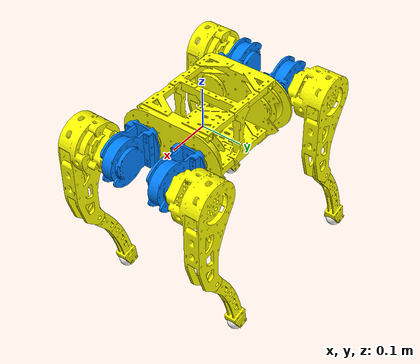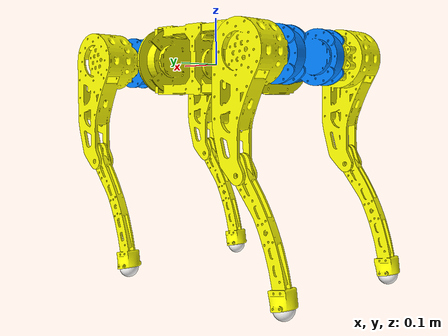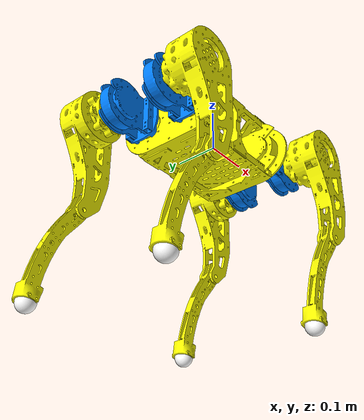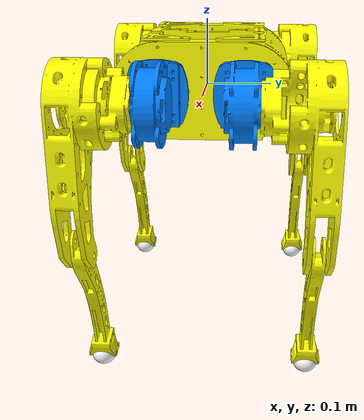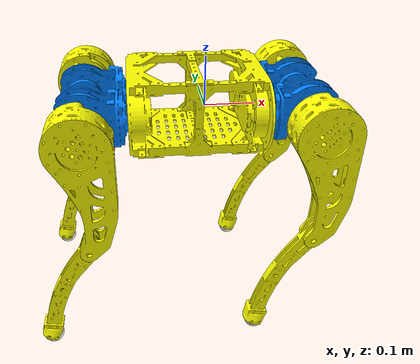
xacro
<?xml version="1.0" encoding="utf-8"?>
<robot
  name="g308_km" xmlns:xacro="http://www.ros.org/wiki/xacro">
  <link
    name="base">
    <inertial>
      <origin
        xyz="-0.021 0.00 -0.006"
        rpy="0 0 0" />
      <mass
        value="4.104" />
      <inertia
        ixx="0.022"
        ixy="0.00"
        ixz="0.00"
        iyy="0.052"
        iyz="0.00"
        izz="0.063" />
    </inertial>
    <visual>
      <origin
        xyz="0 0 0"
        rpy="0 0 0" />
      <geometry>
        <mesh
          filename="package://g308_km/meshes/base_link.STL" />
      </geometry>
      <material
        name="">
        <color
          rgba="1 1 0 1" />
      </material>
    </visual>
    <collision>
      <origin
        xyz="0 0 0"
        rpy="0 0 0" />
      <geometry>
        <mesh
          filename="package://g308_km/meshes/base_link.STL" />
      </geometry>
    </collision>
  </link>
  <link
    name="FL_hip">
    <inertial>
      <origin
        xyz="0.046 0.00 -0.001"
        rpy="0 0 0" />
      <mass
        value="1.034" />
      <inertia
        ixx="0.001"
        ixy="0.0"
        ixz="0.0"
        iyy="0.001"
        iyz="0.00"
        izz="0.002" />
    </inertial>
    <visual>
      <origin
        xyz="0 0 0"
        rpy="0 0 0" />
      <geometry>
        <mesh
          filename="package://g308_km/meshes/FL_hip.STL" />
      </geometry>
      <material
        name="">
        <color
          rgba="0 0.501960784313725 1 1" />
      </material>
    </visual>
    <collision>
      <origin
        xyz="0 0 0"
        rpy="0 0 0" />
      <geometry>
        <mesh
          filename="package://g308_km/meshes/FL_hip.STL" />
      </geometry>
    </collision>
  </link>
  <joint
    name="FL_hip_joint"
    type="revolute">
    <origin
      xyz="-0.1699 -0.0615 0.0077356"
      rpy="1.5708 0 3.1416" />
    <parent
      link="base" />
    <child
      link="FL_hip" />
    <axis
      xyz="1 0 0" />
    <limit
      lower="-0.25"
      upper="0.25"
      effort="20"
      velocity="10" />
  </joint>
  <link
    name="FL_thigh">
    <inertial>
      <origin
        xyz="-0.002683 -0.027136 -0.042559"
        rpy="0 0 0" />
      <mass
        value="1.623153" />
      <inertia
        ixx="0.007266"
        ixy="-0.000730"
        ixz="-0.00177"
        iyy="0.002161"
        iyz="-0.000979"
        izz="0.007364" />
    </inertial>
    <visual>
      <origin
        xyz="0 0 0"
        rpy="0 0 0" />
      <geometry>
        <mesh
          filename="package://g308_km/meshes/FL_thigh.STL" />
      </geometry>
      <material
        name="">
        <color
          rgba="1 1 0 1" />
      </material>
    </visual>
    <collision>
      <origin
        xyz="0 0 0"
        rpy="0 0 0" />
      <geometry>
        <mesh
          filename="package://g308_km/meshes/FL_thigh.STL" />
      </geometry>
    </collision>
  </link>
  <joint
    name="FL_thigh_joint"
    type="revolute">
    <origin
      xyz="0.0677 0 -0.039"
      rpy="0 0 0" />
    <parent
      link="FL_hip" />
    <child
      link="FL_thigh" />
    <axis
      xyz="0 0 -1" />
    <limit
      lower="-1.5"
      upper="1.5"
      effort="20"
      velocity="10" />
  </joint>
  <link
    name="FL_calf">
    <inertial>
      <origin
        xyz="0.0502864229248673 -0.091368336916456 0.0100012603719881"
        rpy="0 0 0" />
      <mass
        value="0.244" />
      <inertia
        ixx="0.001"
        ixy="0.001"
        ixz="0.0"
        iyy="0.0"
        iyz="0.0"
        izz="0.002" />
    </inertial>
    <visual>
      <origin
        xyz="0 0 0"
        rpy="0 0 0" />
      <geometry>
        <mesh
          filename="package://g308_km/meshes/FL_calf.STL" />
      </geometry>
      <material
        name="">
        <color
          rgba="1 1 0 1" />
      </material>
    </visual>
    <collision>
      <origin
        xyz="0 0 0"
        rpy="0 0 0" />
      <geometry>
        <mesh
          filename="package://g308_km/meshes/FL_calf.STL" />
      </geometry>
    </collision>
  </link>
  <joint
    name="FL_calf_joint"
    type="revolute">
    <origin
      xyz="0 -0.22 -0.0765"
      rpy="0 0 0" />
    <parent
      link="FL_thigh" />
    <child
      link="FL_calf" />
    <axis
      xyz="0 0 -1" />
    <limit
      lower="-2.3"
      upper="0"
      effort="20"
      velocity="10" />
  </joint>
  <link
    name="FL_foot">
    <inertial>
      <origin
        xyz="5.57990809113562E-09 0.000156464784550781 6.38025034006562E-05"
        rpy="0 0 0" />
      <mass
        value="0.0311902243903797" />
      <inertia
        ixx="5.06120841117781E-06"
        ixy="1.89067382214396E-14"
        ixz="8.44229934715806E-13"
        iyy="4.98515638872325E-06"
        iyz="-1.02064134491074E-08"
        izz="5.01872622594312E-06" />
    </inertial>
    <visual>
      <origin
        xyz="0 0 0"
        rpy="0 0 0" />
      <geometry>
        <mesh
          filename="package://g308_km/meshes/FL_foot.STL" />
      </geometry>
      <material
        name="">
        <color
          rgba="1 1 1 1" />
      </material>
    </visual>
    <collision>
      <origin
        xyz="0 0 0"
        rpy="0 0 0" />
      <geometry>
        <mesh
          filename="package://g308_km/meshes/FL_foot.STL" />
      </geometry>
    </collision>
  </link>
  <joint
    name="FL_foot_joint"
    type="fixed">
    <origin
      xyz="0.096205 -0.22407 0.01"
      rpy="2.9432 1.5708 0" />
    <parent
      link="FL_calf" />
    <child
      link="FL_foot" />
    <axis
      xyz="0 0 0" />
    <limit
      effort="20"
      velocity="10" />
  </joint>
  <link
    name="RL_hip">
    <inertial>
      <origin
        xyz="-0.045606 0.00005 -0.000897"
        rpy="0 0 0" />
      <mass
        value="1.034431" />
      <inertia
        ixx="0.000668"
        ixy="-0.000004"
        ixz="-0.000019"
        iyy="0.001443"
        iyz="-9.7756225314779E-09"
        izz="0.001692" />
    </inertial>
    <visual>
      <origin
        xyz="0 0 0"
        rpy="0 0 0" />
      <geometry>
        <mesh
          filename="package://g308_km/meshes/RL_hip.STL" />
      </geometry>
      <material
        name="">
        <color
          rgba="0 0.501960784313725 1 1" />
      </material>
    </visual>
    <collision>
      <origin
        xyz="0 0 0"
        rpy="0 0 0" />
      <geometry>
        <mesh
          filename="package://g308_km/meshes/RL_hip.STL" />
      </geometry>
    </collision>
  </link>
  <joint
    name="RL_hip_joint"
    type="revolute">
    <origin
      xyz="0.12709 -0.0615 0.0077356"
      rpy="1.5708 0 3.1416" />
    <parent
      link="base" />
    <child
      link="RL_hip" />
    <axis
      xyz="1 0 0" />
    <limit
      lower="-0.25"
      upper="0.25"
      effort="20"
      velocity="10" />
  </joint>
  <link
    name="RL_thigh">
    <inertial>
      <origin
        xyz="-0.014325 -0.015494 -0.0263559"
        rpy="0 0 0" />
      <mass
        value="1.623153" />
      <inertia
        ixx="0.007266"
        ixy="-0.000730"
        ixz="-0.000177"
        iyy="0.002161"
        iyz="-0.000979"
        izz="0.007364" />
    </inertial>
    <visual>
      <origin
        xyz="0 0 0"
        rpy="0 0 0" />
      <geometry>
        <mesh
          filename="package://g308_km/meshes/RL_thigh.STL" />
      </geometry>
      <material
        name="">
        <color
          rgba="1 1 0 1" />
      </material>
    </visual>
    <collision>
      <origin
        xyz="0 0 0"
        rpy="0 0 0" />
      <geometry>
        <mesh
          filename="package://g308_km/meshes/RL_thigh.STL" />
      </geometry>
    </collision>
  </link>
  <joint
    name="RL_thigh_joint"
    type="revolute">
    <origin
      xyz="-0.056059 -0.011641 -0.059"
      rpy="0 0 0" />
    <parent
      link="RL_hip" />
    <child
      link="RL_thigh" />
    <axis
      xyz="0 0 -1" />
    <limit
      lower="-1.5"
      upper="1.5"
      effort="20"
      velocity="10" />
  </joint>
  <link
    name="RL_calf">
    <inertial>
      <origin
        xyz="0.050286422924934 -0.0913683369164015 0.0100012603719424"
        rpy="0 0 0" />
      <mass
        value="0.243573" />
      <inertia
        ixx="0.001367"
        ixy="-0.000642"
        ixz="0.0"
        iyy="0.000356"
        iyz="0.0"
        izz="0.001698" />
    </inertial>
    <visual>
      <origin
        xyz="0 0 0"
        rpy="0 0 0" />
      <geometry>
        <mesh
          filename="package://g308_km/meshes/RL_calf.STL" />
      </geometry>
      <material
        name="">
        <color
          rgba="1 1 0 1" />
      </material>
    </visual>
    <collision>
      <origin
        xyz="0 0 0"
        rpy="0 0 0" />
      <geometry>
        <mesh
          filename="package://g308_km/meshes/RL_calf.STL" />
      </geometry>
    </collision>
  </link>
  <joint
    name="RL_calf_joint"
    type="revolute">
    <origin
      xyz="-0.011641 -0.20836 -0.0565"
      rpy="0 0 0" />
    <parent
      link="RL_thigh" />
    <child
      link="RL_calf" />
    <axis
      xyz="0 0 -1" />
    <limit
      lower="-2.3"
      upper="0"
      effort="20"
      velocity="10" />
  </joint>
  <link
    name="RL_foot">
    <inertial>
      <origin
        xyz="5.57990809113562E-09 0.000156464784550669 6.38025034006562E-05"
        rpy="0 0 0" />
      <mass
        value="0.0311902243903798" />
      <inertia
        ixx="5.06120841117782E-06"
        ixy="1.89067431518709E-14"
        ixz="8.44229935295326E-13"
        iyy="4.98515638872326E-06"
        iyz="-1.0206413449107E-08"
        izz="5.01872622594313E-06" />
    </inertial>
    <visual>
      <origin
        xyz="0 0 0"
        rpy="0 0 0" />
      <geometry>
        <mesh
          filename="package://g308_km/meshes/RL_foot.STL" />
      </geometry>
      <material
        name="">
        <color
          rgba="1 1 1 1" />
      </material>
    </visual>
    <collision>
      <origin
        xyz="0 0 0"
        rpy="0 0 0" />
      <geometry>
        <mesh
          filename="package://g308_km/meshes/RL_foot.STL" />
      </geometry>
    </collision>
  </link>
  <joint
    name="RL_foot_joint"
    type="fixed">
    <origin
      xyz="0.096205 -0.22407 0.01"
      rpy="2.9432 1.5708 0" />
    <parent
      link="RL_calf" />
    <child
      link="RL_foot" />
    <axis
      xyz="0 0 0" />
  </joint>
  <link
    name="FR_hip">
    <inertial>
      <origin
        xyz="0.0045611 0.00005 0.000897"
        rpy="0 0 0" />
      <mass
        value="1.034431" />
      <inertia
        ixx="0.000668"
        ixy="0.000004"
        ixz="-0.00002"
        iyy="0.001444"
        iyz="0.0"
        izz="0.001692" />
    </inertial>
    <visual>
      <origin
        xyz="0 0 0"
        rpy="0 0 0" />
      <geometry>
        <mesh
          filename="package://g308_km/meshes/FR_hip.STL" />
      </geometry>
      <material
        name="">
        <color
          rgba="0 0.501960784313725 1 1" />
      </material>
    </visual>
    <collision>
      <origin
        xyz="0 0 0"
        rpy="0 0 0" />
      <geometry>
        <mesh
          filename="package://g308_km/meshes/FR_hip.STL" />
      </geometry>
    </collision>
  </link>
  <joint
    name="FR_hip_joint"
    type="revolute">
    <origin
      xyz="-0.1699 0.0615 0.0077356"
      rpy="1.5708 0 3.1416" />
    <parent
      link="base" />
    <child
      link="FR_hip" />
    <axis
      xyz="1 0 0" />
    <limit
      lower="-0.25"
      upper="0.25"
      effort="20"
      velocity="10" />
  </joint>
  <link
    name="FR_thigh">
    <inertial>
      <origin
        xyz="-0.014296 -0.015465 0.022559"
        rpy="0 0 0" />
      <mass
        value="1.623153" />
      <inertia
        ixx="0.007268"
        ixy="-0.000732"
        ixz="0.000177"
        iyy="0.002162"
        iyz="0.00098"
        izz="0.007366" />
    </inertial>
    <visual>
      <origin
        xyz="0 0 0"
        rpy="0 0 0" />
      <geometry>
        <mesh
          filename="package://g308_km/meshes/FR_thigh.STL" />
      </geometry>
      <material
        name="">
        <color
          rgba="1 1 0 1" />
      </material>
    </visual>
    <collision>
      <origin
        xyz="0 0 0"
        rpy="0 0 0" />
      <geometry>
        <mesh
          filename="package://g308_km/meshes/FR_thigh.STL" />
      </geometry>
    </collision>
  </link>
  <joint
    name="FR_thigh_joint"
    type="revolute">
    <origin
      xyz="0.079341 -0.011641 0.059"
      rpy="0 0 0" />
    <parent
      link="FR_hip" />
    <child
      link="FR_thigh" />
    <axis
      xyz="0 0 -1" />
    <limit
      lower="-1.5"
      upper="1.5"
      effort="20"
      velocity="10" />
  </joint>
  <link
    name="FR_calf">
    <inertial>
      <origin
        xyz="0.0502864229245757 -0.0913683369170326 0.0100012603711955"
        rpy="0 0 0" />
      <mass
        value="0.24357427073011" />
      <inertia
        ixx="0.001367"
        ixy="0.000642"
        ixz="0.00"
        iyy="0.000356"
        iyz="0.00"
        izz="0.001698" />
    </inertial>
    <visual>
      <origin
        xyz="0 0 0"
        rpy="0 0 0" />
      <geometry>
        <mesh
          filename="package://g308_km/meshes/FR_calf.STL" />
      </geometry>
      <material
        name="">
        <color
          rgba="1 1 0 1" />
      </material>
    </visual>
    <collision>
      <origin
        xyz="0 0 0"
        rpy="0 0 0" />
      <geometry>
        <mesh
          filename="package://g308_km/meshes/FR_calf.STL" />
      </geometry>
    </collision>
  </link>
  <joint
    name="FR_calf_joint"
    type="revolute">
    <origin
      xyz="-0.011641 -0.20836 0.0365"
      rpy="0 0 0" />
    <parent
      link="FR_thigh" />
    <child
      link="FR_calf" />
    <axis
      xyz="0 0 -1" />
    <limit
      lower="-2.3"
      upper="0"
      effort="20"
      velocity="10" />
  </joint>
  <link
    name="FR_foot">
    <inertial>
      <origin
        xyz="5.57990809113562E-09 0.000156464784550669 6.38025034006839E-05"
        rpy="0 0 0" />
      <mass
        value="0.0311902243903797" />
      <inertia
        ixx="5.06120841117781E-06"
        ixy="1.8906738882967E-14"
        ixz="8.44229938233497E-13"
        iyy="4.98515638872325E-06"
        iyz="-1.0206413449107E-08"
        izz="5.01872622594312E-06" />
    </inertial>
    <visual>
      <origin
        xyz="0 0 0"
        rpy="0 0 0" />
      <geometry>
        <mesh
          filename="package://g308_km/meshes/FR_foot.STL" />
      </geometry>
      <material
        name="">
        <color
          rgba="1 1 1 1" />
      </material>
    </visual>
    <collision>
      <origin
        xyz="0 0 0"
        rpy="0 0 0" />
      <geometry>
        <mesh
          filename="package://g308_km/meshes/FR_foot.STL" />
      </geometry>
    </collision>
  </link>
  <joint
    name="FR_foot_joint"
    type="fixed">
    <origin
      xyz="0.096204687182093 -0.224068557253551 0.00999999999925294"
      rpy="2.94324795442943 1.5707963267949 0" />
    <parent
      link="FR_calf" />
    <child
      link="FR_foot" />
    <axis
      xyz="0 0 0" />
  </joint>
  <link
    name="RR_hip">
    <inertial>
      <origin
        xyz="-0.045611 0.000114 0.000897"
        rpy="0 0 0" />
      <mass
        value="1.034431" />
      <inertia
        ixx="0.000668"
        ixy="-0.000003"
        ixz="0.000019"
        iyy="0.001443"
        iyz="0.00"
        izz="0.001692" />
    </inertial>
    <visual>
      <origin
        xyz="0 0 0"
        rpy="0 0 0" />
      <geometry>
        <mesh
          filename="package://g308_km/meshes/RR_hip.STL" />
      </geometry>
      <material
        name="">
        <color
          rgba="0 0.501960784313725 1 1" />
      </material>
    </visual>
    <collision>
      <origin
        xyz="0 0 0"
        rpy="0 0 0" />
      <geometry>
        <mesh
          filename="package://g308_km/meshes/RR_hip.STL" />
      </geometry>
    </collision>
  </link>
  <joint
    name="RR_hip_joint"
    type="revolute">
    <origin
      xyz="0.12709 0.0615 0.0077356"
      rpy="1.5708 0 3.1416" />
    <parent
      link="base" />
    <child
      link="RR_hip" />
    <axis
      xyz="1 0 0" />
    <limit
      lower="-0.25"
      upper="0.25"
      effort="20"
      velocity="10" />
  </joint>
  <link
    name="RR_thigh">
    <inertial>
      <origin
        xyz="-0.14296 -0.015465 0.022559"
        rpy="0 0 0" />
      <mass
        value="1.623153" />
      <inertia
        ixx="0.007268"
        ixy="-0.000732"
        ixz="0.000177"
        iyy="0.002162"
        iyz="0.000980"
        izz="0.007366" />
    </inertial>
    <visual>
      <origin
        xyz="0 0 0"
        rpy="0 0 0" />
      <geometry>
        <mesh
          filename="package://g308_km/meshes/RR_thigh.STL" />
      </geometry>
      <material
        name="">
        <color
          rgba="1 1 0 1" />
      </material>
    </visual>
    <collision>
      <origin
        xyz="0 0 0"
        rpy="0 0 0" />
      <geometry>
        <mesh
          filename="package://g308_km/meshes/RR_thigh.STL" />
      </geometry>
    </collision>
  </link>
  <joint
    name="RR_thigh_joint"
    type="revolute">
    <origin
      xyz="-0.056059 -0.011641 0.059"
      rpy="0 0 0" />
    <parent
      link="RR_hip" />
    <child
      link="RR_thigh" />
    <axis
      xyz="0 0 -1" />
    <limit
      lower="-1.5"
      upper="1.5"
      effort="20"
      velocity="10" />
  </joint>
  <link
    name="RR_calf">
    <inertial>
      <origin
        xyz="0.0502864229248036 -0.0913683369165559 0.0100012603716604"
        rpy="0 0 0" />
      <mass
        value="0.24357427073011" />
      <inertia
        ixx="0.000648204117665621"
        ixy="-0.000308645680473211"
        ixz="-2.22084372635169E-09"
        iyy="0.000186059943789856"
        iyz="5.13538413169624E-09"
        izz="0.000823306990230793" />
    </inertial>
    <visual>
      <origin
        xyz="0 0 0"
        rpy="0 0 0" />
      <geometry>
        <mesh
          filename="package://g308_km/meshes/RR_calf.STL" />
      </geometry>
      <material
        name="">
        <color
          rgba="1 1 0 1" />
      </material>
    </visual>
    <collision>
      <origin
        xyz="0 0 0"
        rpy="0 0 0" />
      <geometry>
        <mesh
          filename="package://g308_km/meshes/RR_calf.STL" />
      </geometry>
    </collision>
  </link>
  <joint
    name="RR_calf_joint"
    type="revolute">
    <origin
      xyz="-0.011641 -0.20836 0.0365"
      rpy="0 0 0" />
    <parent
      link="RR_thigh" />
    <child
      link="RR_calf" />
    <axis
      xyz="0 0 -1" />
    <limit
      lower="-2.3"
      upper="0"
      effort="20"
      velocity="10" />
  </joint>
  <link
    name="RR_foot">
    <inertial>
      <origin
        xyz="5.57990806338005E-09 0.000156464784550725 6.38025034006839E-05"
        rpy="0 0 0" />
      <mass
        value="0.0311902243903798" />
      <inertia
        ixx="5.06120841117781E-06"
        ixy="1.89067421324778E-14"
        ixz="8.44229932322898E-13"
        iyy="4.98515638872325E-06"
        iyz="-1.020641344911E-08"
        izz="5.01872622594312E-06" />
    </inertial>
    <visual>
      <origin
        xyz="0 0 0"
        rpy="0 0 0" />
      <geometry>
        <mesh
          filename="package://g308_km/meshes/RR_foot.STL" />
      </geometry>
      <material
        name="">
        <color
          rgba="1 1 1 1" />
      </material>
    </visual>
    <collision>
      <origin
        xyz="0 0 0"
        rpy="0 0 0" />
      <geometry>
        <mesh
          filename="package://g308_km/meshes/RR_foot.STL" />
      </geometry>
    </collision>
  </link>
  <joint
    name="RR_foot_joint"
    type="fixed">
    <origin
      xyz="0.0962046871823301 -0.224068557253087 0.00999999999971268"
      rpy="2.94324795442943 1.5707963267949 0" />
    <parent
      link="RR_calf" />
    <child
      link="RR_foot" />
    <axis
      xyz="0 0 0" />
  </joint>

  <transmission name="t11">
    <type>transmission_interface/SimpleTransmission</type>
    <joint name="FL_hip_joint">
      <hardwareInterface>hardware_interface/EffortJointInterface</hardwareInterface>
    </joint>
    <actuator name="a11">
      <mechanicalReduction>1.0</mechanicalReduction>
      <hardwareInterface>hardware_interface/EffortJointInterface</hardwareInterface>
    </actuator>
  </transmission>
   <transmission name="t12">
    <type>transmission_interface/SimpleTransmission</type>
    <joint name="FL_thigh_joint">
      <hardwareInterface>hardware_interface/EffortJointInterface</hardwareInterface>
    </joint>
    <actuator name="a12">
      <mechanicalReduction>1.0</mechanicalReduction>
      <hardwareInterface>hardware_interface/EffortJointInterface</hardwareInterface>
    </actuator>
  </transmission>
   <transmission name="t13">
    <type>transmission_interface/SimpleTransmission</type>
    <joint name="FL_calf_joint">
      <hardwareInterface>hardware_interface/EffortJointInterface</hardwareInterface>
    </joint>
    <actuator name="a13">
      <mechanicalReduction>1.0</mechanicalReduction>
      <hardwareInterface>hardware_interface/EffortJointInterface</hardwareInterface>
    </actuator>
  </transmission>
  <transmission name="t21">
    <type>transmission_interface/SimpleTransmission</type>
    <joint name="RL_hip_joint">
      <hardwareInterface>hardware_interface/EffortJointInterface</hardwareInterface>
    </joint>
    <actuator name="a21">
      <mechanicalReduction>1.0</mechanicalReduction>
      <hardwareInterface>hardware_interface/EffortJointInterface</hardwareInterface>
    </actuator>
  </transmission>
   <transmission name="t22">
    <type>transmission_interface/SimpleTransmission</type>
    <joint name="RL_thigh_joint">
      <hardwareInterface>hardware_interface/EffortJointInterface</hardwareInterface>
    </joint>
    <actuator name="a21">
      <mechanicalReduction>1.0</mechanicalReduction>
      <hardwareInterface>hardware_interface/EffortJointInterface</hardwareInterface>
    </actuator>
  </transmission>
   <transmission name="t23">
    <type>transmission_interface/SimpleTransmission</type>
    <joint name="RL_calf_joint">
      <hardwareInterface>hardware_interface/EffortJointInterface</hardwareInterface>
    </joint>
    <actuator name="a23">
      <mechanicalReduction>1.0</mechanicalReduction>
      <hardwareInterface>hardware_interface/EffortJointInterface</hardwareInterface>
    </actuator>
  </transmission>
   <transmission name="t31">
    <type>transmission_interface/SimpleTransmission</type>
    <joint name="FR_hip_joint">
      <hardwareInterface>hardware_interface/EffortJointInterface</hardwareInterface>
    </joint>
    <actuator name="a31">
      <mechanicalReduction>1.0</mechanicalReduction>
      <hardwareInterface>hardware_interface/EffortJointInterface</hardwareInterface>
    </actuator>
  </transmission>
   <transmission name="t32">
    <type>transmission_interface/SimpleTransmission</type>
    <joint name="FR_thigh_joint">
      <hardwareInterface>hardware_interface/EffortJointInterface</hardwareInterface>
    </joint>
    <actuator name="a32">
      <mechanicalReduction>1.0</mechanicalReduction>
      <hardwareInterface>hardware_interface/EffortJointInterface</hardwareInterface>
    </actuator>
  </transmission>
   <transmission name="t32">
    <type>transmission_interface/SimpleTransmission</type>
    <joint name="FR_calf_joint">
      <hardwareInterface>hardware_interface/EffortJointInterface</hardwareInterface>
    </joint>
    <actuator name="a32">
      <mechanicalReduction>1.0</mechanicalReduction>
      <hardwareInterface>hardware_interface/EffortJointInterface</hardwareInterface>
    </actuator>
  </transmission>
   <transmission name="t41">
    <type>transmission_interface/SimpleTransmission</type>
    <joint name="RR_hip_joint">
      <hardwareInterface>hardware_interface/EffortJointInterface</hardwareInterface>
    </joint>
    <actuator name="a41">
      <mechanicalReduction>1.0</mechanicalReduction>
      <hardwareInterface>hardware_interface/EffortJointInterface</hardwareInterface>
    </actuator>
  </transmission>
   <transmission name="t42">
    <type>transmission_interface/SimpleTransmission</type>
    <joint name="RR_thigh_joint">
      <hardwareInterface>hardware_interface/EffortJointInterface</hardwareInterface>
    </joint>
    <actuator name="a42">
      <mechanicalReduction>1.0</mechanicalReduction>
      <hardwareInterface>hardware_interface/EffortJointInterface</hardwareInterface>
    </actuator>
  </transmission>
   <transmission name="t43">
    <type>transmission_interface/SimpleTransmission</type>
    <joint name="RR_calf_joint">
      <hardwareInterface>hardware_interface/EffortJointInterface</hardwareInterface>
    </joint>
    <actuator name="a43">
      <mechanicalReduction>1.0</mechanicalReduction>
      <hardwareInterface>hardware_interface/EffortJointInterface</hardwareInterface>
    </actuator>
  </transmission>
  <gazebo>
    <plugin name="gazebo_ros_control" filename="libgazebo_ros_control.so">
      <robotNamespace>/horse</robotNamespace>
      <robotSimType>gazebo_ros_control/DefaultRobotHWSim</robotSimType>
      <legacyModeNS>true</legacyModeNS>
    </plugin>
  </gazebo>
  <gazebo reference="base">
    <kp>1000000.0</kp>
    <kd>1.0</kd>
    <mu1>0.2</mu1>
    <mu2>0.2</mu2>
    <minDepth>0.001</minDepth>
  </gazebo>

  <gazebo reference="RR_foot">
    <kp>1000000.0</kp>
    <kd>1.0</kd>
    <mu1>0.6</mu1>
    <mu2>0.6</mu2>
    <minDepth>0.001</minDepth>
  </gazebo>

  <gazebo reference="FR_foot">

    <kp>1000000.0</kp>
    <kd>1.0</kd>
    <mu1>0.6</mu1>
    <mu2>0.6</mu2>
    <minDepth>0.001</minDepth>
  </gazebo>

  <gazebo reference="FL_foot">
    <kp>1000000.0</kp>
    <kd>1.0</kd>
    <mu1>0.6</mu1>
    <mu2>0.6</mu2>
    <minDepth>0.001</minDepth>
  </gazebo>

  <gazebo reference="RL_foot">
    <kp>1000000.0</kp>
    <kd>1.0</kd>
    <mu1>0.6</mu1>
    <mu2>0.6</mu2>
    <minDepth>0.001</minDepth>
  </gazebo>

  <gazebo>
      <plugin name="3dplot" filename="libLinkPlot3DPlugin.so">
          <frequency>10</frequency>
          <plot>
              <link>base</link>
              <pose>0 0 0 0 0 0</pose>
              <material>Gazebo/Yellow</material>
          </plot>
      </plugin>
  </gazebo>

      <joint name="imu_joint" type="fixed">
        <parent link="base"/>
        <child link="imu_link"/>
        <origin rpy="0 0 0" xyz="0 0 0"/>
    </joint>

    <link name="imu_link">
        <inertial>
            <mass value="0.001"/>
            <origin rpy="0 0 0" xyz="0 0 0"/>
            <inertia ixx="0.0001" ixy="0" ixz="0" iyy="0.0001" iyz="0" izz="0.0001"/>
        </inertial>
        <visual>
            <origin rpy="0 0 0" xyz="0 0 0"/>
            <geometry>
                <box size="0.001 0.001 0.001"/>
            </geometry>
            <material name="red"/>
        </visual>
        <collision>
            <origin rpy="0 0 0" xyz="0 0 0"/>
            <geometry>
                <box size=".001 .001 .001"/>
            </geometry>
        </collision>
    </link>

        <gazebo reference="imu_link">
        <gravity>true</gravity>
        <sensor name="imu_sensor" type="imu">
            <always_on>true</always_on>
            <update_rate>1000</update_rate>
            <visualize>true</visualize>
            <topic>__default_topic__</topic>
            <plugin filename="libgazebo_ros_imu_sensor.so" name="imu_plugin">
                <topicName>base_imu</topicName>
                <bodyName>imu_link</bodyName>
                <updateRateHZ>1000.0</updateRateHZ>
                <gaussianNoise>0.0</gaussianNoise>
                <xyzOffset>0 0 0</xyzOffset>
                <rpyOffset>0 0 0</rpyOffset>
                <frameName>imu_link</frameName>
            </plugin>
            <pose>0 0 0 0 0 0</pose>
        </sensor>
    </gazebo>

   <gazebo
      reference="RR_foot_joint">
     <provideFeedback>true</provideFeedback>
     <disableFixedJointLumping>true</disableFixedJointLumping>
   </gazebo>

  <gazebo>
    <plugin name="ft_sensor" filename="libgazebo_ros_ft_sensor.so">
      <updateRate>100.0</updateRate>
      <topicName>RR_contact</topicName>
      <jointName>RR_foot_joint</jointName>
    </plugin>
  </gazebo>

  <gazebo
      reference="RL_foot_joint">
     <provideFeedback>true</provideFeedback>
     <disableFixedJointLumping>true</disableFixedJointLumping>
  </gazebo>

  <gazebo>
    <plugin name="ft_sensor" filename="libgazebo_ros_ft_sensor.so">
      <updateRate>100.0</updateRate>
      <topicName>RL_contact</topicName>
      <jointName>RL_foot_joint</jointName>
    </plugin>
  </gazebo>

     <gazebo
      reference="FL_foot_joint">
     <provideFeedback>true</provideFeedback>
     <disableFixedJointLumping>true</disableFixedJointLumping>
   </gazebo>

  <gazebo>
    <plugin name="ft_sensor" filename="libgazebo_ros_ft_sensor.so">
      <updateRate>100.0</updateRate>
      <topicName>FL_contact</topicName>
      <jointName>FL_foot_joint</jointName>
    </plugin>
  </gazebo>

     <gazebo
      reference="FR_foot_joint">
     <provideFeedback>true</provideFeedback>
     <disableFixedJointLumping>true</disableFixedJointLumping>
   </gazebo>

  <gazebo>
    <plugin name="ft_sensor" filename="libgazebo_ros_ft_sensor.so">
      <updateRate>100.0</updateRate>
      <topicName>FR_contact</topicName>
      <jointName>FR_foot_joint</jointName>
    </plugin>
  </gazebo>
</robot>
